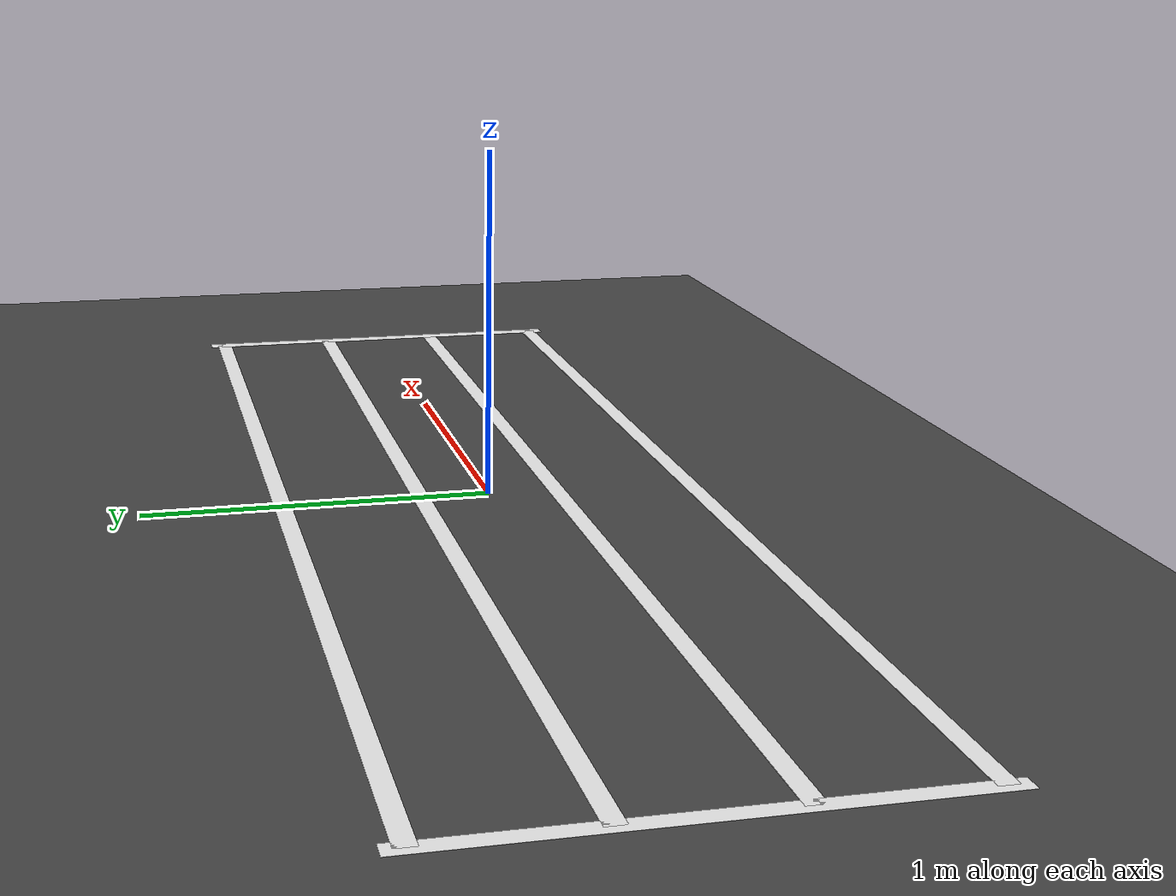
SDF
<?xml version="1.0" ?>
<sdf version="1.9">
  <world name="jetracer_track">

    <!-- ── Physics ──────────────────────────────────────────────────────── -->
    <physics name="1ms" type="ode">
      <max_step_size>0.001</max_step_size>
      <real_time_factor>1.0</real_time_factor>
      <real_time_update_rate>1000</real_time_update_rate>
    </physics>

    <!-- ── Required Gazebo Harmonic system plugins ───────────────────────── -->
    <plugin filename="gz-sim-physics-system"        name="gz::sim::systems::Physics"/>
    <plugin filename="gz-sim-user-commands-system"  name="gz::sim::systems::UserCommands"/>
    <plugin filename="gz-sim-scene-broadcaster-system" name="gz::sim::systems::SceneBroadcaster"/>
    <plugin filename="gz-sim-sensors-system"        name="gz::sim::systems::Sensors">
      <render_engine>ogre2</render_engine>
    </plugin>
    <plugin filename="gz-sim-imu-system"            name="gz::sim::systems::Imu"/>
    <plugin filename="gz-sim-contact-system"        name="gz::sim::systems::Contact"/>

    <!-- ── Lighting ─────────────────────────────────────────────────────── -->
    <light name="sun" type="directional">
      <cast_shadows>true</cast_shadows>
      <pose>0 0 10 0 0 0</pose>
      <diffuse>1.0 1.0 1.0 1</diffuse>
      <specular>0.3 0.3 0.3 1</specular>
      <direction>-0.5 0.1 -0.9</direction>
    </light>

    <!-- ── Ground plane (dark grey tarmac) ──────────────────────────────── -->
    <model name="ground_plane">
      <static>true</static>
      <link name="link">
        <collision name="collision">
          <geometry><plane><normal>0 0 1</normal><size>20 20</size></plane></geometry>
          <surface>
            <friction><ode><mu>0.8</mu><mu2>0.8</mu2></ode></friction>
          </surface>
        </collision>
        <visual name="visual">
          <geometry><plane><normal>0 0 1</normal><size>20 20</size></plane></geometry>
          <material>
            <ambient>0.25 0.25 0.25 1</ambient>
            <diffuse>0.30 0.30 0.30 1</diffuse>
            <specular>0.01 0.01 0.01 1</specular>
          </material>
        </visual>
      </link>
    </model>

    <!-- Left outer line: Y = +0.60, along X -->
    <model name="lane_left_outer_top">
      <static>true</static>
      <pose>0 0.60 0.001 0 0 0</pose>
      <link name="link">
        <visual name="visual">
          <geometry><box><size>4.0 0.05 0.001</size></box></geometry>
          <material><ambient>1 1 1 1</ambient><diffuse>1 1 1 1</diffuse></material>
        </visual>
      </link>
    </model>

    <!-- Left inner line: Y = +0.20, along X -->
    <model name="lane_left_inner_top">
      <static>true</static>
      <pose>0 0.20 0.001 0 0 0</pose>
      <link name="link">
        <visual name="visual">
          <geometry><box><size>4.0 0.05 0.001</size></box></geometry>
          <material><ambient>1 1 1 1</ambient><diffuse>1 1 1 1</diffuse></material>
        </visual>
      </link>
    </model>

    <!-- Right inner line: Y = -0.20, along X -->
    <model name="lane_right_inner_top">
      <static>true</static>
      <pose>0 -0.20 0.001 0 0 0</pose>
      <link name="link">
        <visual name="visual">
          <geometry><box><size>4.0 0.05 0.001</size></box></geometry>
          <material><ambient>1 1 1 1</ambient><diffuse>1 1 1 1</diffuse></material>
        </visual>
      </link>
    </model>

    <!-- Right outer line: Y = -0.60, along X -->
    <model name="lane_right_outer_top">
      <static>true</static>
      <pose>0 -0.60 0.001 0 0 0</pose>
      <link name="link">
        <visual name="visual">
          <geometry><box><size>4.0 0.05 0.001</size></box></geometry>
          <material><ambient>1 1 1 1</ambient><diffuse>1 1 1 1</diffuse></material>
        </visual>
      </link>
    </model>

    <!-- End caps: short cross-lines at X = ±2.0 -->
    <model name="lane_end_cap_left">
      <static>true</static>
      <pose>2.0 0 0.001 0 0 1.5708</pose>
      <link name="link">
        <visual name="visual">
          <geometry><box><size>1.3 0.05 0.001</size></box></geometry>
          <material><ambient>1 1 1 1</ambient><diffuse>1 1 1 1</diffuse></material>
        </visual>
      </link>
    </model>

    <model name="lane_end_cap_right">
      <static>true</static>
      <pose>-2.0 0 0.001 0 0 1.5708</pose>
      <link name="link">
        <visual name="visual">
          <geometry><box><size>1.3 0.05 0.001</size></box></geometry>
          <material><ambient>1 1 1 1</ambient><diffuse>1 1 1 1</diffuse></material>
        </visual>
      </link>
    </model>

  </world>
</sdf>
